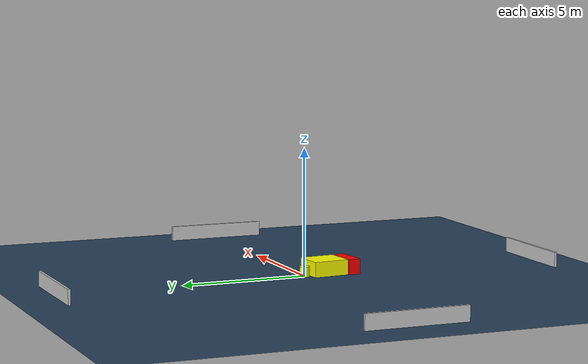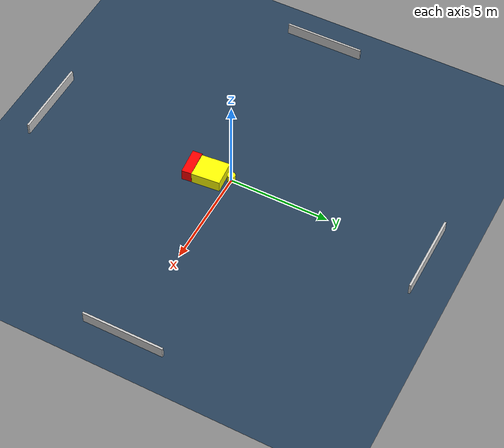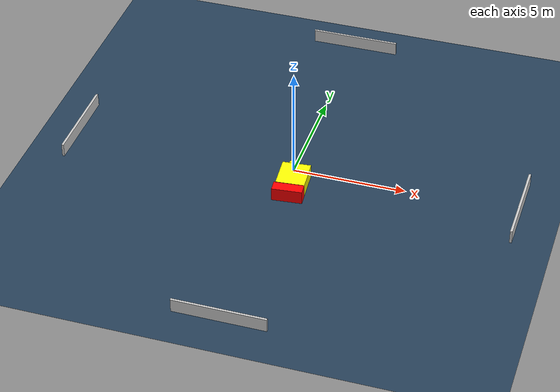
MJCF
<?xml version="1.0" ?>
<mujoco model="generated_environment">
  <option timestep="0.01" integrator="RK4" cone="elliptic"/>
  <default>
    <geom density="1"/>
  </default>
  <asset>
    <texture builtin="gradient" height="3072" name="skybox" rgb1="0.3 0.5 0.7" rgb2="0 0 0" type="skybox" width="512"/>
    <texture builtin="checker" height="300" name="groundplane" rgb1="0.2 0.3 0.4" rgb2="0.1 0.2 0.3" type="2d" width="300"/>
    <material name="groundplane" reflectance="0.2" texrepeat="5 5" texture="groundplane"/>
  </asset>
  <worldbody>
    <light dir="0 0 -1" directional="true" pos="0 0 1.5"/>
    <geom condim="3" friction="0.5 0.005 0.001" material="groundplane" name="floor" pos="0 0 0" size="0 0 0.05" type="plane"/>
    <body name="walls">
      <geom name="wall_1" condim="4" pos="-10.0 0.0 0.3" rgba="0.800000011920929 0.800000011920929 0.800000011920929 1.0" size="0.05 2.0 0.3" type="box"/>
      <geom name="wall_2" condim="4" pos="10.0 0.0 0.3" rgba="0.800000011920929 0.800000011920929 0.800000011920929 1.0" size="0.05 2.0 0.3" type="box"/>
      <geom name="wall_3" condim="4" pos="0.0 -10.0 0.3" rgba="0.800000011920929 0.800000011920929 0.800000011920929 1.0" size="2.0 0.05 0.3" type="box"/>
      <geom name="wall_4" condim="4" pos="0.0 10.0 0.3" rgba="0.800000011920929 0.800000011920929 0.800000011920929 1.0" size="2.0 0.05 0.3" type="box"/>
    </body>
    <body name="robot">
      <joint name="joint_x" type="slide" pos="0 0 0" axis="1 0 0"/>
      <joint name="joint_y" type="slide" pos="0 0 0" axis="0 1 0"/>
      <geom name="robot" type="cylinder" pos="0.0 0.0 0.2" size="0.2 0.2 0.0" mass="5.0" friction="1.0 0.005 0.0001" condim="4" rgba="1.0 1.0 0.0 1.0"/>
    </body>
    <body name="obstacle_1_movable">
      <geom name="obstacle_1_movable" condim="4" pos="0.27541261680402485 -0.9498022876620863 0.3" euler="0 0 4.780111429832341" friction="0.0 0.005 0.001" rgba="1.0 1.0 0.0 1.0" size="0.6312232382907927 0.7149915472037285 0.3" type="box" mass="0.1"/>
      <joint type="free"/>
    </body>
    <body name="obstacle_2_static">
      <geom name="obstacle_2_static" condim="4" pos="0.3239825751105613 -1.9218254287242684 0.3" euler="0 0 275.42740834255596" friction="0.0 0.005 0.001" rgba="1.0 0.0 0.0 1.0" size="0.24608375772327323 0.6641539010018109 0.3" type="box"/>
    </body>
  </worldbody>
  <actuator>
    <motor name="actuator_x" joint="joint_x" gear="1" ctrlrange="-1 1"/>
    <motor name="actuator_y" joint="joint_y" gear="1" ctrlrange="-1 1"/>
  </actuator>
</mujoco>
